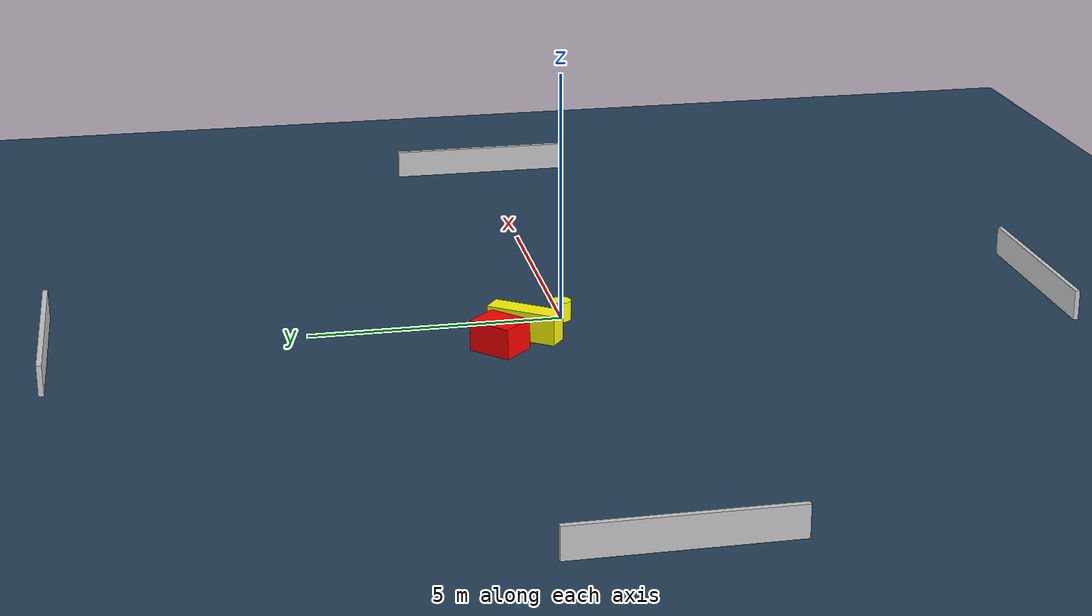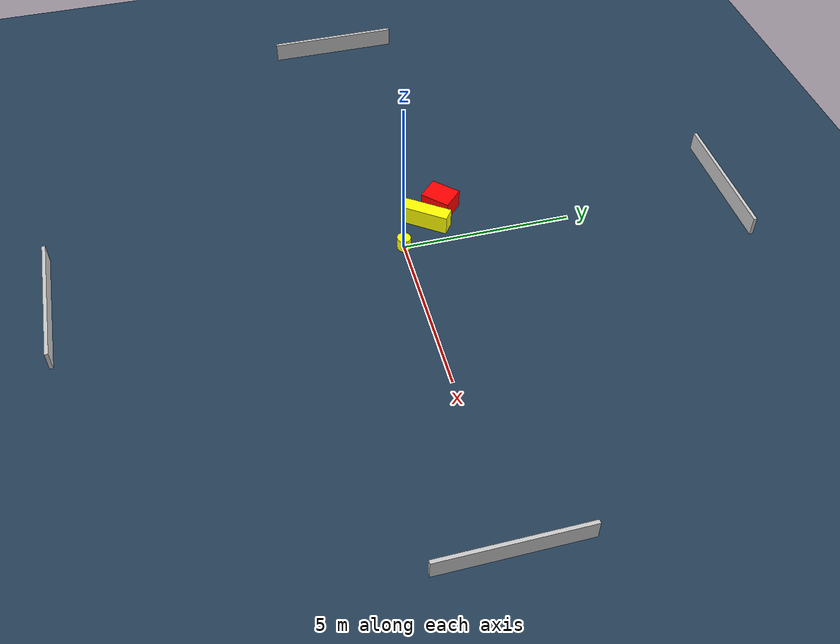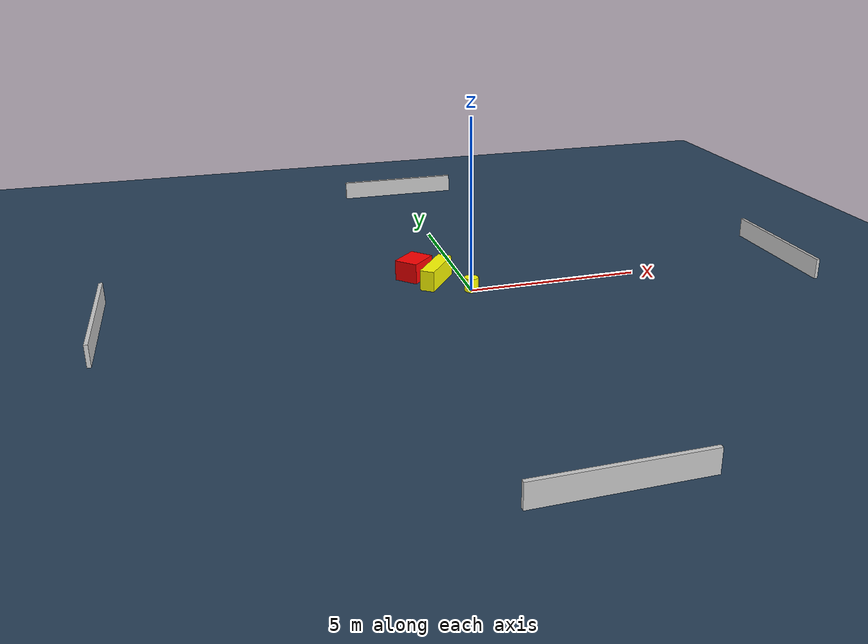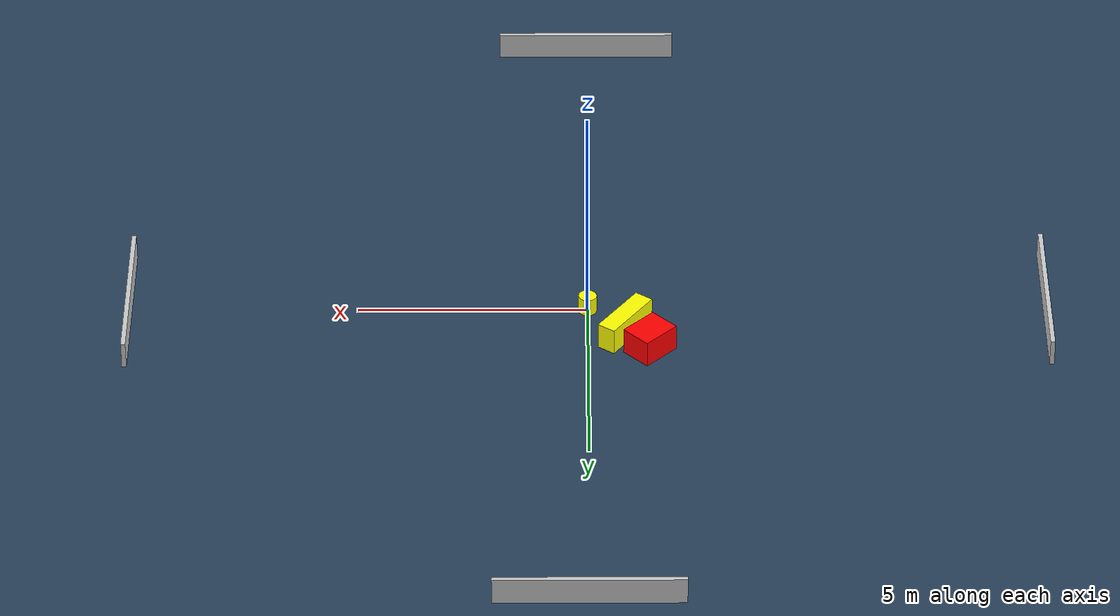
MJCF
<?xml version="1.0" ?>
<mujoco model="generated_environment">
  <option timestep="0.01" integrator="RK4" cone="elliptic"/>
  <default>
    <geom density="1"/>
  </default>
  <asset>
    <texture builtin="gradient" height="3072" name="skybox" rgb1="0.3 0.5 0.7" rgb2="0 0 0" type="skybox" width="512"/>
    <texture builtin="checker" height="300" name="groundplane" rgb1="0.2 0.3 0.4" rgb2="0.1 0.2 0.3" type="2d" width="300"/>
    <material name="groundplane" reflectance="0.2" texrepeat="5 5" texture="groundplane"/>
  </asset>
  <worldbody>
    <light dir="0 0 -1" directional="true" pos="0 0 1.5"/>
    <geom condim="3" friction="0.5 0.005 0.001" material="groundplane" name="floor" pos="0 0 0" size="0 0 0.05" type="plane"/>
    <body name="walls">
      <geom name="wall_1" condim="4" pos="-10.0 0.0 0.3" rgba="0.800000011920929 0.800000011920929 0.800000011920929 1.0" size="0.05 2.0 0.3" type="box"/>
      <geom name="wall_2" condim="4" pos="10.0 0.0 0.3" rgba="0.800000011920929 0.800000011920929 0.800000011920929 1.0" size="0.05 2.0 0.3" type="box"/>
      <geom name="wall_3" condim="4" pos="0.0 -10.0 0.3" rgba="0.800000011920929 0.800000011920929 0.800000011920929 1.0" size="2.0 0.05 0.3" type="box"/>
      <geom name="wall_4" condim="4" pos="0.0 10.0 0.3" rgba="0.800000011920929 0.800000011920929 0.800000011920929 1.0" size="2.0 0.05 0.3" type="box"/>
    </body>
    <body name="robot">
      <joint name="joint_x" type="slide" pos="0 0 0" axis="1 0 0"/>
      <joint name="joint_y" type="slide" pos="0 0 0" axis="0 1 0"/>
      <geom name="robot" type="cylinder" pos="0.0 0.0 0.2" size="0.2 0.2 0.0" mass="5.0" friction="1.0 0.005 0.0001" condim="4" rgba="1.0 1.0 0.0 1.0"/>
    </body>
    <body name="obstacle_1_movable">
      <geom name="obstacle_1_movable" condim="4" pos="-0.8100160691534563 0.873173318581614 0.3" euler="0 0 54.3799039560752" friction="0.0 0.005 0.001" rgba="1.0 1.0 0.0 1.0" size="0.7150697189964157 0.20984411083098747 0.3" type="box" mass="0.1"/>
      <joint type="free"/>
    </body>
    <body name="obstacle_2_static">
      <geom name="obstacle_2_static" condim="4" pos="-1.3401131010614797 1.457715869897706 0.3" euler="0 0 134.64664422875597" friction="0.0 0.005 0.001" rgba="1.0 0.0 0.0 1.0" size="0.3585713678717135 0.447241289082583 0.3" type="box"/>
    </body>
  </worldbody>
  <actuator>
    <motor name="actuator_x" joint="joint_x" gear="1" ctrlrange="-1 1"/>
    <motor name="actuator_y" joint="joint_y" gear="1" ctrlrange="-1 1"/>
  </actuator>
</mujoco>
